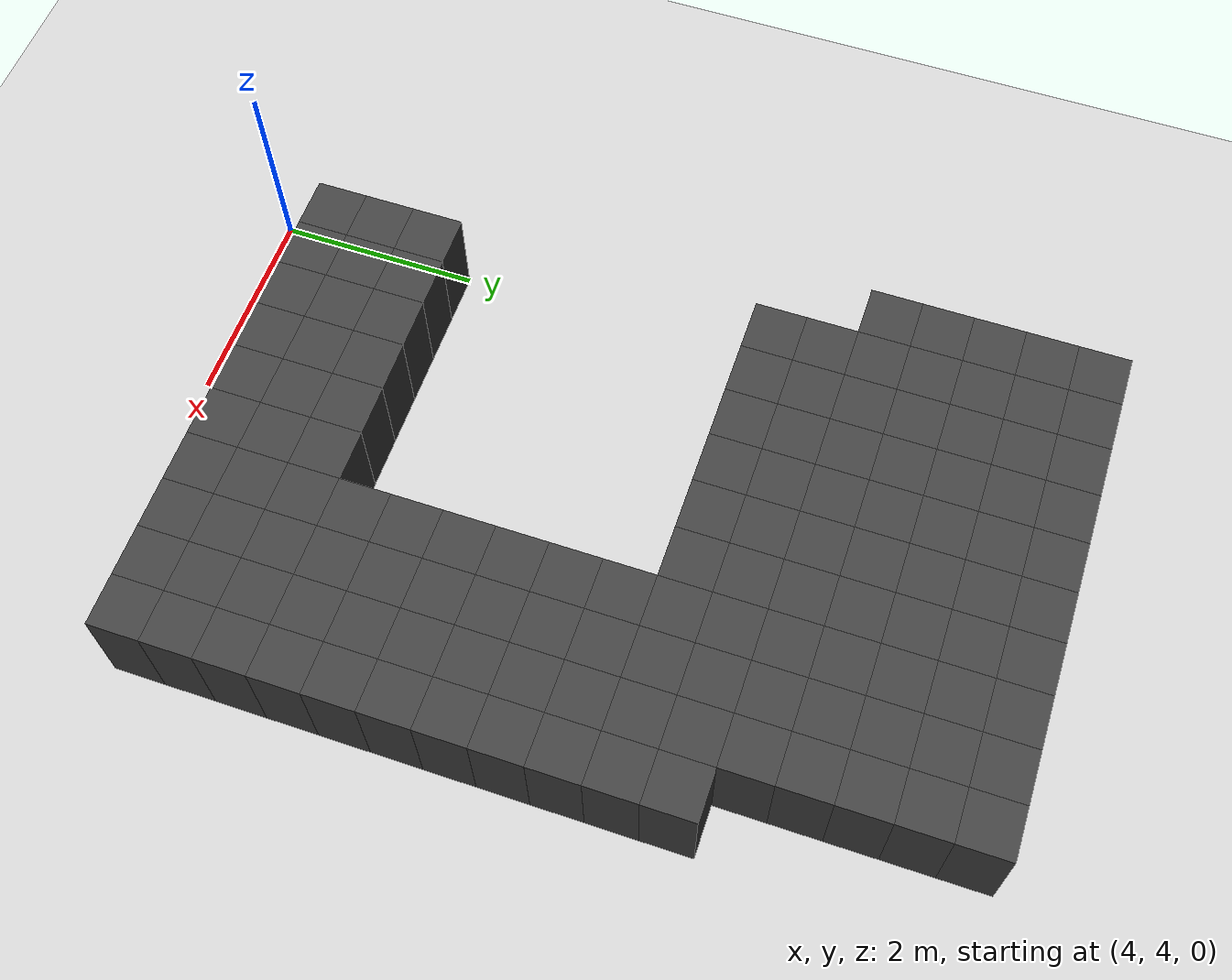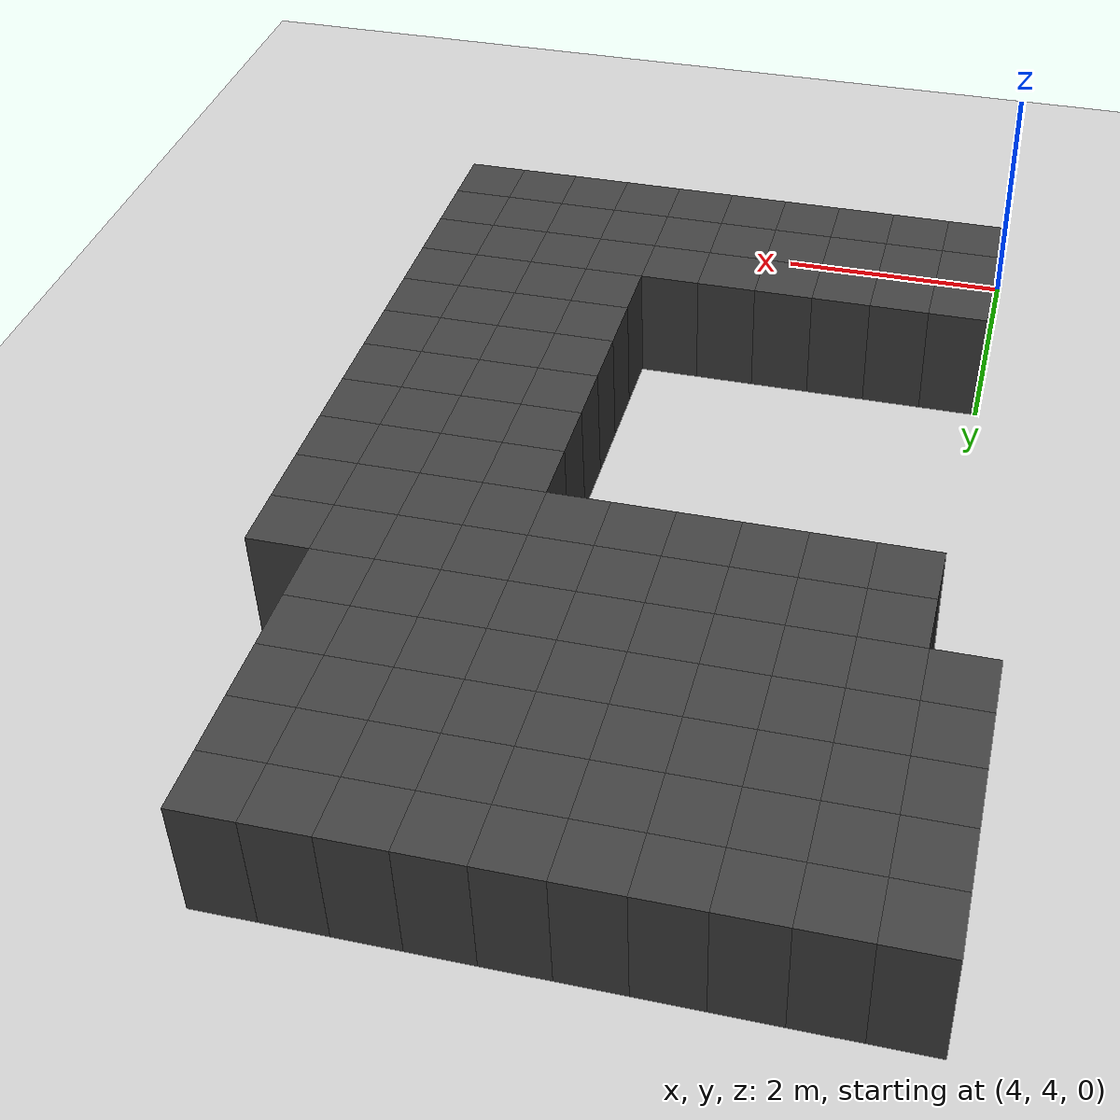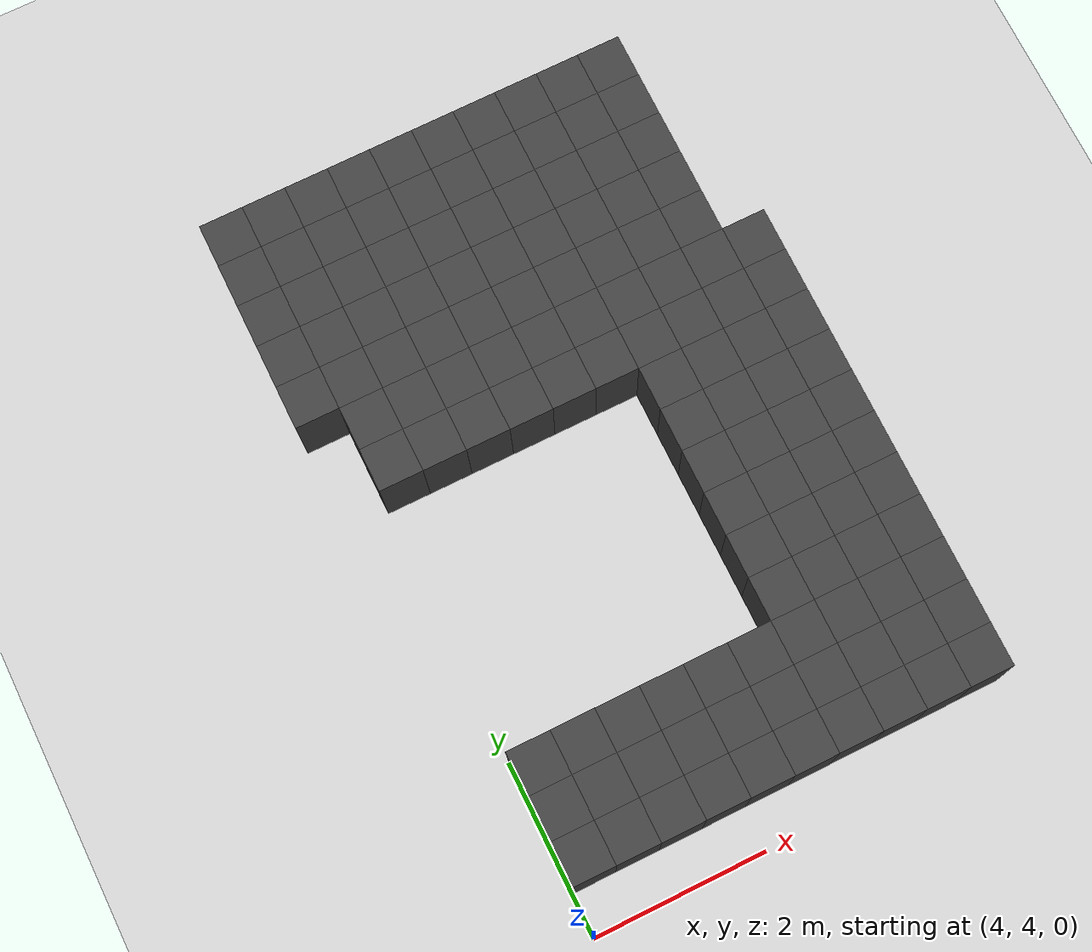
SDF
<sdf version="1.7">
 <world name="map_10726">
  <model name="ground_plane">
   <static>true</static>
   <link name="link">
    <collision name="collision">
     <geometry><plane><normal>0 0 1</normal><size>200 200</size></plane></geometry>
    </collision>
    <visual name="visual">
     <geometry><plane><normal>0 0 1</normal><size>200 200</size></plane></geometry>
     <material><ambient>0.8 0.8 0.8 1</ambient><diffuse>0.8 0.8 0.8 1</diffuse></material>
    </visual>
   </link>
  </model>
  <model name="maze_environment">
   <static>true</static>
   <link name="wall_32">
    <pose>3.750 12.250 0.500 0 0 0</pose>
    <collision name="col"><geometry><box><size>0.5 0.5 1.0</size></box></geometry></collision>
    <visual name="vis">
     <geometry><box><size>0.5 0.5 1.0</size></box></geometry>
     <material><ambient>0.15 0.15 0.15 1</ambient><diffuse>0.25 0.25 0.25 1</diffuse></material>
    </visual>
   </link>
   <link name="wall_33">
    <pose>4.250 12.250 0.500 0 0 0</pose>
    <collision name="col"><geometry><box><size>0.5 0.5 1.0</size></box></geometry></collision>
    <visual name="vis">
     <geometry><box><size>0.5 0.5 1.0</size></box></geometry>
     <material><ambient>0.15 0.15 0.15 1</ambient><diffuse>0.25 0.25 0.25 1</diffuse></material>
    </visual>
   </link>
   <link name="wall_34">
    <pose>4.750 12.250 0.500 0 0 0</pose>
    <collision name="col"><geometry><box><size>0.5 0.5 1.0</size></box></geometry></collision>
    <visual name="vis">
     <geometry><box><size>0.5 0.5 1.0</size></box></geometry>
     <material><ambient>0.15 0.15 0.15 1</ambient><diffuse>0.25 0.25 0.25 1</diffuse></material>
    </visual>
   </link>
   <link name="wall_35">
    <pose>5.250 12.250 0.500 0 0 0</pose>
    <collision name="col"><geometry><box><size>0.5 0.5 1.0</size></box></geometry></collision>
    <visual name="vis">
     <geometry><box><size>0.5 0.5 1.0</size></box></geometry>
     <material><ambient>0.15 0.15 0.15 1</ambient><diffuse>0.25 0.25 0.25 1</diffuse></material>
    </visual>
   </link>
   <link name="wall_36">
    <pose>5.750 12.250 0.500 0 0 0</pose>
    <collision name="col"><geometry><box><size>0.5 0.5 1.0</size></box></geometry></collision>
    <visual name="vis">
     <geometry><box><size>0.5 0.5 1.0</size></box></geometry>
     <material><ambient>0.15 0.15 0.15 1</ambient><diffuse>0.25 0.25 0.25 1</diffuse></material>
    </visual>
   </link>
   <link name="wall_37">
    <pose>6.250 12.250 0.500 0 0 0</pose>
    <collision name="col"><geometry><box><size>0.5 0.5 1.0</size></box></geometry></collision>
    <visual name="vis">
     <geometry><box><size>0.5 0.5 1.0</size></box></geometry>
     <material><ambient>0.15 0.15 0.15 1</ambient><diffuse>0.25 0.25 0.25 1</diffuse></material>
    </visual>
   </link>
   <link name="wall_38">
    <pose>6.750 12.250 0.500 0 0 0</pose>
    <collision name="col"><geometry><box><size>0.5 0.5 1.0</size></box></geometry></collision>
    <visual name="vis">
     <geometry><box><size>0.5 0.5 1.0</size></box></geometry>
     <material><ambient>0.15 0.15 0.15 1</ambient><diffuse>0.25 0.25 0.25 1</diffuse></material>
    </visual>
   </link>
   <link name="wall_39">
    <pose>7.250 12.250 0.500 0 0 0</pose>
    <collision name="col"><geometry><box><size>0.5 0.5 1.0</size></box></geometry></collision>
    <visual name="vis">
     <geometry><box><size>0.5 0.5 1.0</size></box></geometry>
     <material><ambient>0.15 0.15 0.15 1</ambient><diffuse>0.25 0.25 0.25 1</diffuse></material>
    </visual>
   </link>
   <link name="wall_40">
    <pose>7.750 12.250 0.500 0 0 0</pose>
    <collision name="col"><geometry><box><size>0.5 0.5 1.0</size></box></geometry></collision>
    <visual name="vis">
     <geometry><box><size>0.5 0.5 1.0</size></box></geometry>
     <material><ambient>0.15 0.15 0.15 1</ambient><diffuse>0.25 0.25 0.25 1</diffuse></material>
    </visual>
   </link>
   <link name="wall_41">
    <pose>8.250 12.250 0.500 0 0 0</pose>
    <collision name="col"><geometry><box><size>0.5 0.5 1.0</size></box></geometry></collision>
    <visual name="vis">
     <geometry><box><size>0.5 0.5 1.0</size></box></geometry>
     <material><ambient>0.15 0.15 0.15 1</ambient><diffuse>0.25 0.25 0.25 1</diffuse></material>
    </visual>
   </link>
   <link name="wall_79">
    <pose>3.750 11.750 0.500 0 0 0</pose>
    <collision name="col"><geometry><box><size>0.5 0.5 1.0</size></box></geometry></collision>
    <visual name="vis">
     <geometry><box><size>0.5 0.5 1.0</size></box></geometry>
     <material><ambient>0.15 0.15 0.15 1</ambient><diffuse>0.25 0.25 0.25 1</diffuse></material>
    </visual>
   </link>
   <link name="wall_80">
    <pose>4.250 11.750 0.500 0 0 0</pose>
    <collision name="col"><geometry><box><size>0.5 0.5 1.0</size></box></geometry></collision>
    <visual name="vis">
     <geometry><box><size>0.5 0.5 1.0</size></box></geometry>
     <material><ambient>0.15 0.15 0.15 1</ambient><diffuse>0.25 0.25 0.25 1</diffuse></material>
    </visual>
   </link>
   <link name="wall_81">
    <pose>4.750 11.750 0.500 0 0 0</pose>
    <collision name="col"><geometry><box><size>0.5 0.5 1.0</size></box></geometry></collision>
    <visual name="vis">
     <geometry><box><size>0.5 0.5 1.0</size></box></geometry>
     <material><ambient>0.15 0.15 0.15 1</ambient><diffuse>0.25 0.25 0.25 1</diffuse></material>
    </visual>
   </link>
   <link name="wall_82">
    <pose>5.250 11.750 0.500 0 0 0</pose>
    <collision name="col"><geometry><box><size>0.5 0.5 1.0</size></box></geometry></collision>
    <visual name="vis">
     <geometry><box><size>0.5 0.5 1.0</size></box></geometry>
     <material><ambient>0.15 0.15 0.15 1</ambient><diffuse>0.25 0.25 0.25 1</diffuse></material>
    </visual>
   </link>
   <link name="wall_83">
    <pose>5.750 11.750 0.500 0 0 0</pose>
    <collision name="col"><geometry><box><size>0.5 0.5 1.0</size></box></geometry></collision>
    <visual name="vis">
     <geometry><box><size>0.5 0.5 1.0</size></box></geometry>
     <material><ambient>0.15 0.15 0.15 1</ambient><diffuse>0.25 0.25 0.25 1</diffuse></material>
    </visual>
   </link>
   <link name="wall_84">
    <pose>6.250 11.750 0.500 0 0 0</pose>
    <collision name="col"><geometry><box><size>0.5 0.5 1.0</size></box></geometry></collision>
    <visual name="vis">
     <geometry><box><size>0.5 0.5 1.0</size></box></geometry>
     <material><ambient>0.15 0.15 0.15 1</ambient><diffuse>0.25 0.25 0.25 1</diffuse></material>
    </visual>
   </link>
   <link name="wall_85">
    <pose>6.750 11.750 0.500 0 0 0</pose>
    <collision name="col"><geometry><box><size>0.5 0.5 1.0</size></box></geometry></collision>
    <visual name="vis">
     <geometry><box><size>0.5 0.5 1.0</size></box></geometry>
     <material><ambient>0.15 0.15 0.15 1</ambient><diffuse>0.25 0.25 0.25 1</diffuse></material>
    </visual>
   </link>
   <link name="wall_86">
    <pose>7.250 11.750 0.500 0 0 0</pose>
    <collision name="col"><geometry><box><size>0.5 0.5 1.0</size></box></geometry></collision>
    <visual name="vis">
     <geometry><box><size>0.5 0.5 1.0</size></box></geometry>
     <material><ambient>0.15 0.15 0.15 1</ambient><diffuse>0.25 0.25 0.25 1</diffuse></material>
    </visual>
   </link>
   <link name="wall_87">
    <pose>7.750 11.750 0.500 0 0 0</pose>
    <collision name="col"><geometry><box><size>0.5 0.5 1.0</size></box></geometry></collision>
    <visual name="vis">
     <geometry><box><size>0.5 0.5 1.0</size></box></geometry>
     <material><ambient>0.15 0.15 0.15 1</ambient><diffuse>0.25 0.25 0.25 1</diffuse></material>
    </visual>
   </link>
   <link name="wall_88">
    <pose>8.250 11.750 0.500 0 0 0</pose>
    <collision name="col"><geometry><box><size>0.5 0.5 1.0</size></box></geometry></collision>
    <visual name="vis">
     <geometry><box><size>0.5 0.5 1.0</size></box></geometry>
     <material><ambient>0.15 0.15 0.15 1</ambient><diffuse>0.25 0.25 0.25 1</diffuse></material>
    </visual>
   </link>
   <link name="wall_126">
    <pose>3.750 11.250 0.500 0 0 0</pose>
    <collision name="col"><geometry><box><size>0.5 0.5 1.0</size></box></geometry></collision>
    <visual name="vis">
     <geometry><box><size>0.5 0.5 1.0</size></box></geometry>
     <material><ambient>0.15 0.15 0.15 1</ambient><diffuse>0.25 0.25 0.25 1</diffuse></material>
    </visual>
   </link>
   <link name="wall_127">
    <pose>4.250 11.250 0.500 0 0 0</pose>
    <collision name="col"><geometry><box><size>0.5 0.5 1.0</size></box></geometry></collision>
    <visual name="vis">
     <geometry><box><size>0.5 0.5 1.0</size></box></geometry>
     <material><ambient>0.15 0.15 0.15 1</ambient><diffuse>0.25 0.25 0.25 1</diffuse></material>
    </visual>
   </link>
   <link name="wall_128">
    <pose>4.750 11.250 0.500 0 0 0</pose>
    <collision name="col"><geometry><box><size>0.5 0.5 1.0</size></box></geometry></collision>
    <visual name="vis">
     <geometry><box><size>0.5 0.5 1.0</size></box></geometry>
     <material><ambient>0.15 0.15 0.15 1</ambient><diffuse>0.25 0.25 0.25 1</diffuse></material>
    </visual>
   </link>
   <link name="wall_129">
    <pose>5.250 11.250 0.500 0 0 0</pose>
    <collision name="col"><geometry><box><size>0.5 0.5 1.0</size></box></geometry></collision>
    <visual name="vis">
     <geometry><box><size>0.5 0.5 1.0</size></box></geometry>
     <material><ambient>0.15 0.15 0.15 1</ambient><diffuse>0.25 0.25 0.25 1</diffuse></material>
    </visual>
   </link>
   <link name="wall_130">
    <pose>5.750 11.250 0.500 0 0 0</pose>
    <collision name="col"><geometry><box><size>0.5 0.5 1.0</size></box></geometry></collision>
    <visual name="vis">
     <geometry><box><size>0.5 0.5 1.0</size></box></geometry>
     <material><ambient>0.15 0.15 0.15 1</ambient><diffuse>0.25 0.25 0.25 1</diffuse></material>
    </visual>
   </link>
   <link name="wall_131">
    <pose>6.250 11.250 0.500 0 0 0</pose>
    <collision name="col"><geometry><box><size>0.5 0.5 1.0</size></box></geometry></collision>
    <visual name="vis">
     <geometry><box><size>0.5 0.5 1.0</size></box></geometry>
     <material><ambient>0.15 0.15 0.15 1</ambient><diffuse>0.25 0.25 0.25 1</diffuse></material>
    </visual>
   </link>
   <link name="wall_132">
    <pose>6.750 11.250 0.500 0 0 0</pose>
    <collision name="col"><geometry><box><size>0.5 0.5 1.0</size></box></geometry></collision>
    <visual name="vis">
     <geometry><box><size>0.5 0.5 1.0</size></box></geometry>
     <material><ambient>0.15 0.15 0.15 1</ambient><diffuse>0.25 0.25 0.25 1</diffuse></material>
    </visual>
   </link>
   <link name="wall_133">
    <pose>7.250 11.250 0.500 0 0 0</pose>
    <collision name="col"><geometry><box><size>0.5 0.5 1.0</size></box></geometry></collision>
    <visual name="vis">
     <geometry><box><size>0.5 0.5 1.0</size></box></geometry>
     <material><ambient>0.15 0.15 0.15 1</ambient><diffuse>0.25 0.25 0.25 1</diffuse></material>
    </visual>
   </link>
   <link name="wall_134">
    <pose>7.750 11.250 0.500 0 0 0</pose>
    <collision name="col"><geometry><box><size>0.5 0.5 1.0</size></box></geometry></collision>
    <visual name="vis">
     <geometry><box><size>0.5 0.5 1.0</size></box></geometry>
     <material><ambient>0.15 0.15 0.15 1</ambient><diffuse>0.25 0.25 0.25 1</diffuse></material>
    </visual>
   </link>
   <link name="wall_135">
    <pose>8.250 11.250 0.500 0 0 0</pose>
    <collision name="col"><geometry><box><size>0.5 0.5 1.0</size></box></geometry></collision>
    <visual name="vis">
     <geometry><box><size>0.5 0.5 1.0</size></box></geometry>
     <material><ambient>0.15 0.15 0.15 1</ambient><diffuse>0.25 0.25 0.25 1</diffuse></material>
    </visual>
   </link>
   <link name="wall_173">
    <pose>3.750 10.750 0.500 0 0 0</pose>
    <collision name="col"><geometry><box><size>0.5 0.5 1.0</size></box></geometry></collision>
    <visual name="vis">
     <geometry><box><size>0.5 0.5 1.0</size></box></geometry>
     <material><ambient>0.15 0.15 0.15 1</ambient><diffuse>0.25 0.25 0.25 1</diffuse></material>
    </visual>
   </link>
   <link name="wall_174">
    <pose>4.250 10.750 0.500 0 0 0</pose>
    <collision name="col"><geometry><box><size>0.5 0.5 1.0</size></box></geometry></collision>
    <visual name="vis">
     <geometry><box><size>0.5 0.5 1.0</size></box></geometry>
     <material><ambient>0.15 0.15 0.15 1</ambient><diffuse>0.25 0.25 0.25 1</diffuse></material>
    </visual>
   </link>
   <link name="wall_175">
    <pose>4.750 10.750 0.500 0 0 0</pose>
    <collision name="col"><geometry><box><size>0.5 0.5 1.0</size></box></geometry></collision>
    <visual name="vis">
     <geometry><box><size>0.5 0.5 1.0</size></box></geometry>
     <material><ambient>0.15 0.15 0.15 1</ambient><diffuse>0.25 0.25 0.25 1</diffuse></material>
    </visual>
   </link>
   <link name="wall_176">
    <pose>5.250 10.750 0.500 0 0 0</pose>
    <collision name="col"><geometry><box><size>0.5 0.5 1.0</size></box></geometry></collision>
    <visual name="vis">
     <geometry><box><size>0.5 0.5 1.0</size></box></geometry>
     <material><ambient>0.15 0.15 0.15 1</ambient><diffuse>0.25 0.25 0.25 1</diffuse></material>
    </visual>
   </link>
   <link name="wall_177">
    <pose>5.750 10.750 0.500 0 0 0</pose>
    <collision name="col"><geometry><box><size>0.5 0.5 1.0</size></box></geometry></collision>
    <visual name="vis">
     <geometry><box><size>0.5 0.5 1.0</size></box></geometry>
     <material><ambient>0.15 0.15 0.15 1</ambient><diffuse>0.25 0.25 0.25 1</diffuse></material>
    </visual>
   </link>
   <link name="wall_178">
    <pose>6.250 10.750 0.500 0 0 0</pose>
    <collision name="col"><geometry><box><size>0.5 0.5 1.0</size></box></geometry></collision>
    <visual name="vis">
     <geometry><box><size>0.5 0.5 1.0</size></box></geometry>
     <material><ambient>0.15 0.15 0.15 1</ambient><diffuse>0.25 0.25 0.25 1</diffuse></material>
    </visual>
   </link>
   <link name="wall_179">
    <pose>6.750 10.750 0.500 0 0 0</pose>
    <collision name="col"><geometry><box><size>0.5 0.5 1.0</size></box></geometry></collision>
    <visual name="vis">
     <geometry><box><size>0.5 0.5 1.0</size></box></geometry>
     <material><ambient>0.15 0.15 0.15 1</ambient><diffuse>0.25 0.25 0.25 1</diffuse></material>
    </visual>
   </link>
   <link name="wall_180">
    <pose>7.250 10.750 0.500 0 0 0</pose>
    <collision name="col"><geometry><box><size>0.5 0.5 1.0</size></box></geometry></collision>
    <visual name="vis">
     <geometry><box><size>0.5 0.5 1.0</size></box></geometry>
     <material><ambient>0.15 0.15 0.15 1</ambient><diffuse>0.25 0.25 0.25 1</diffuse></material>
    </visual>
   </link>
   <link name="wall_181">
    <pose>7.750 10.750 0.500 0 0 0</pose>
    <collision name="col"><geometry><box><size>0.5 0.5 1.0</size></box></geometry></collision>
    <visual name="vis">
     <geometry><box><size>0.5 0.5 1.0</size></box></geometry>
     <material><ambient>0.15 0.15 0.15 1</ambient><diffuse>0.25 0.25 0.25 1</diffuse></material>
    </visual>
   </link>
   <link name="wall_182">
    <pose>8.250 10.750 0.500 0 0 0</pose>
    <collision name="col"><geometry><box><size>0.5 0.5 1.0</size></box></geometry></collision>
    <visual name="vis">
     <geometry><box><size>0.5 0.5 1.0</size></box></geometry>
     <material><ambient>0.15 0.15 0.15 1</ambient><diffuse>0.25 0.25 0.25 1</diffuse></material>
    </visual>
   </link>
   <link name="wall_222">
    <pose>3.750 10.250 0.500 0 0 0</pose>
    <collision name="col"><geometry><box><size>0.5 0.5 1.0</size></box></geometry></collision>
    <visual name="vis">
     <geometry><box><size>0.5 0.5 1.0</size></box></geometry>
     <material><ambient>0.15 0.15 0.15 1</ambient><diffuse>0.25 0.25 0.25 1</diffuse></material>
    </visual>
   </link>
   <link name="wall_223">
    <pose>4.250 10.250 0.500 0 0 0</pose>
    <collision name="col"><geometry><box><size>0.5 0.5 1.0</size></box></geometry></collision>
    <visual name="vis">
     <geometry><box><size>0.5 0.5 1.0</size></box></geometry>
     <material><ambient>0.15 0.15 0.15 1</ambient><diffuse>0.25 0.25 0.25 1</diffuse></material>
    </visual>
   </link>
   <link name="wall_224">
    <pose>4.750 10.250 0.500 0 0 0</pose>
    <collision name="col"><geometry><box><size>0.5 0.5 1.0</size></box></geometry></collision>
    <visual name="vis">
     <geometry><box><size>0.5 0.5 1.0</size></box></geometry>
     <material><ambient>0.15 0.15 0.15 1</ambient><diffuse>0.25 0.25 0.25 1</diffuse></material>
    </visual>
   </link>
   <link name="wall_225">
    <pose>5.250 10.250 0.500 0 0 0</pose>
    <collision name="col"><geometry><box><size>0.5 0.5 1.0</size></box></geometry></collision>
    <visual name="vis">
     <geometry><box><size>0.5 0.5 1.0</size></box></geometry>
     <material><ambient>0.15 0.15 0.15 1</ambient><diffuse>0.25 0.25 0.25 1</diffuse></material>
    </visual>
   </link>
   <link name="wall_226">
    <pose>5.750 10.250 0.500 0 0 0</pose>
    <collision name="col"><geometry><box><size>0.5 0.5 1.0</size></box></geometry></collision>
    <visual name="vis">
     <geometry><box><size>0.5 0.5 1.0</size></box></geometry>
     <material><ambient>0.15 0.15 0.15 1</ambient><diffuse>0.25 0.25 0.25 1</diffuse></material>
    </visual>
   </link>
   <link name="wall_227">
    <pose>6.250 10.250 0.500 0 0 0</pose>
    <collision name="col"><geometry><box><size>0.5 0.5 1.0</size></box></geometry></collision>
    <visual name="vis">
     <geometry><box><size>0.5 0.5 1.0</size></box></geometry>
     <material><ambient>0.15 0.15 0.15 1</ambient><diffuse>0.25 0.25 0.25 1</diffuse></material>
    </visual>
   </link>
   <link name="wall_228">
    <pose>6.750 10.250 0.500 0 0 0</pose>
    <collision name="col"><geometry><box><size>0.5 0.5 1.0</size></box></geometry></collision>
    <visual name="vis">
     <geometry><box><size>0.5 0.5 1.0</size></box></geometry>
     <material><ambient>0.15 0.15 0.15 1</ambient><diffuse>0.25 0.25 0.25 1</diffuse></material>
    </visual>
   </link>
   <link name="wall_229">
    <pose>7.250 10.250 0.500 0 0 0</pose>
    <collision name="col"><geometry><box><size>0.5 0.5 1.0</size></box></geometry></collision>
    <visual name="vis">
     <geometry><box><size>0.5 0.5 1.0</size></box></geometry>
     <material><ambient>0.15 0.15 0.15 1</ambient><diffuse>0.25 0.25 0.25 1</diffuse></material>
    </visual>
   </link>
   <link name="wall_230">
    <pose>7.750 10.250 0.500 0 0 0</pose>
    <collision name="col"><geometry><box><size>0.5 0.5 1.0</size></box></geometry></collision>
    <visual name="vis">
     <geometry><box><size>0.5 0.5 1.0</size></box></geometry>
     <material><ambient>0.15 0.15 0.15 1</ambient><diffuse>0.25 0.25 0.25 1</diffuse></material>
    </visual>
   </link>
   <link name="wall_231">
    <pose>8.250 10.250 0.500 0 0 0</pose>
    <collision name="col"><geometry><box><size>0.5 0.5 1.0</size></box></geometry></collision>
    <visual name="vis">
     <geometry><box><size>0.5 0.5 1.0</size></box></geometry>
     <material><ambient>0.15 0.15 0.15 1</ambient><diffuse>0.25 0.25 0.25 1</diffuse></material>
    </visual>
   </link>
   <link name="wall_272">
    <pose>4.250 9.750 0.500 0 0 0</pose>
    <collision name="col"><geometry><box><size>0.5 0.5 1.0</size></box></geometry></collision>
    <visual name="vis">
     <geometry><box><size>0.5 0.5 1.0</size></box></geometry>
     <material><ambient>0.15 0.15 0.15 1</ambient><diffuse>0.25 0.25 0.25 1</diffuse></material>
    </visual>
   </link>
   <link name="wall_273">
    <pose>4.750 9.750 0.500 0 0 0</pose>
    <collision name="col"><geometry><box><size>0.5 0.5 1.0</size></box></geometry></collision>
    <visual name="vis">
     <geometry><box><size>0.5 0.5 1.0</size></box></geometry>
     <material><ambient>0.15 0.15 0.15 1</ambient><diffuse>0.25 0.25 0.25 1</diffuse></material>
    </visual>
   </link>
   <link name="wall_274">
    <pose>5.250 9.750 0.500 0 0 0</pose>
    <collision name="col"><geometry><box><size>0.5 0.5 1.0</size></box></geometry></collision>
    <visual name="vis">
     <geometry><box><size>0.5 0.5 1.0</size></box></geometry>
     <material><ambient>0.15 0.15 0.15 1</ambient><diffuse>0.25 0.25 0.25 1</diffuse></material>
    </visual>
   </link>
   <link name="wall_275">
    <pose>5.750 9.750 0.500 0 0 0</pose>
    <collision name="col"><geometry><box><size>0.5 0.5 1.0</size></box></geometry></collision>
    <visual name="vis">
     <geometry><box><size>0.5 0.5 1.0</size></box></geometry>
     <material><ambient>0.15 0.15 0.15 1</ambient><diffuse>0.25 0.25 0.25 1</diffuse></material>
    </visual>
   </link>
   <link name="wall_276">
    <pose>6.250 9.750 0.500 0 0 0</pose>
    <collision name="col"><geometry><box><size>0.5 0.5 1.0</size></box></geometry></collision>
    <visual name="vis">
     <geometry><box><size>0.5 0.5 1.0</size></box></geometry>
     <material><ambient>0.15 0.15 0.15 1</ambient><diffuse>0.25 0.25 0.25 1</diffuse></material>
    </visual>
   </link>
   <link name="wall_277">
    <pose>6.750 9.750 0.500 0 0 0</pose>
    <collision name="col"><geometry><box><size>0.5 0.5 1.0</size></box></geometry></collision>
    <visual name="vis">
     <geometry><box><size>0.5 0.5 1.0</size></box></geometry>
     <material><ambient>0.15 0.15 0.15 1</ambient><diffuse>0.25 0.25 0.25 1</diffuse></material>
    </visual>
   </link>
   <link name="wall_278">
    <pose>7.250 9.750 0.500 0 0 0</pose>
    <collision name="col"><geometry><box><size>0.5 0.5 1.0</size></box></geometry></collision>
    <visual name="vis">
     <geometry><box><size>0.5 0.5 1.0</size></box></geometry>
     <material><ambient>0.15 0.15 0.15 1</ambient><diffuse>0.25 0.25 0.25 1</diffuse></material>
    </visual>
   </link>
   <link name="wall_279">
    <pose>7.750 9.750 0.500 0 0 0</pose>
    <collision name="col"><geometry><box><size>0.5 0.5 1.0</size></box></geometry></collision>
    <visual name="vis">
     <geometry><box><size>0.5 0.5 1.0</size></box></geometry>
     <material><ambient>0.15 0.15 0.15 1</ambient><diffuse>0.25 0.25 0.25 1</diffuse></material>
    </visual>
   </link>
   <link name="wall_280">
    <pose>8.250 9.750 0.500 0 0 0</pose>
    <collision name="col"><geometry><box><size>0.5 0.5 1.0</size></box></geometry></collision>
    <visual name="vis">
     <geometry><box><size>0.5 0.5 1.0</size></box></geometry>
     <material><ambient>0.15 0.15 0.15 1</ambient><diffuse>0.25 0.25 0.25 1</diffuse></material>
    </visual>
   </link>
   <link name="wall_281">
    <pose>8.750 9.750 0.500 0 0 0</pose>
    <collision name="col"><geometry><box><size>0.5 0.5 1.0</size></box></geometry></collision>
    <visual name="vis">
     <geometry><box><size>0.5 0.5 1.0</size></box></geometry>
     <material><ambient>0.15 0.15 0.15 1</ambient><diffuse>0.25 0.25 0.25 1</diffuse></material>
    </visual>
   </link>
   <link name="wall_321">
    <pose>4.250 9.250 0.500 0 0 0</pose>
    <collision name="col"><geometry><box><size>0.5 0.5 1.0</size></box></geometry></collision>
    <visual name="vis">
     <geometry><box><size>0.5 0.5 1.0</size></box></geometry>
     <material><ambient>0.15 0.15 0.15 1</ambient><diffuse>0.25 0.25 0.25 1</diffuse></material>
    </visual>
   </link>
   <link name="wall_322">
    <pose>4.750 9.250 0.500 0 0 0</pose>
    <collision name="col"><geometry><box><size>0.5 0.5 1.0</size></box></geometry></collision>
    <visual name="vis">
     <geometry><box><size>0.5 0.5 1.0</size></box></geometry>
     <material><ambient>0.15 0.15 0.15 1</ambient><diffuse>0.25 0.25 0.25 1</diffuse></material>
    </visual>
   </link>
   <link name="wall_323">
    <pose>5.250 9.250 0.500 0 0 0</pose>
    <collision name="col"><geometry><box><size>0.5 0.5 1.0</size></box></geometry></collision>
    <visual name="vis">
     <geometry><box><size>0.5 0.5 1.0</size></box></geometry>
     <material><ambient>0.15 0.15 0.15 1</ambient><diffuse>0.25 0.25 0.25 1</diffuse></material>
    </visual>
   </link>
   <link name="wall_324">
    <pose>5.750 9.250 0.500 0 0 0</pose>
    <collision name="col"><geometry><box><size>0.5 0.5 1.0</size></box></geometry></collision>
    <visual name="vis">
     <geometry><box><size>0.5 0.5 1.0</size></box></geometry>
     <material><ambient>0.15 0.15 0.15 1</ambient><diffuse>0.25 0.25 0.25 1</diffuse></material>
    </visual>
   </link>
   <link name="wall_325">
    <pose>6.250 9.250 0.500 0 0 0</pose>
    <collision name="col"><geometry><box><size>0.5 0.5 1.0</size></box></geometry></collision>
    <visual name="vis">
     <geometry><box><size>0.5 0.5 1.0</size></box></geometry>
     <material><ambient>0.15 0.15 0.15 1</ambient><diffuse>0.25 0.25 0.25 1</diffuse></material>
    </visual>
   </link>
   <link name="wall_326">
    <pose>6.750 9.250 0.500 0 0 0</pose>
    <collision name="col"><geometry><box><size>0.5 0.5 1.0</size></box></geometry></collision>
    <visual name="vis">
     <geometry><box><size>0.5 0.5 1.0</size></box></geometry>
     <material><ambient>0.15 0.15 0.15 1</ambient><diffuse>0.25 0.25 0.25 1</diffuse></material>
    </visual>
   </link>
   <link name="wall_327">
    <pose>7.250 9.250 0.500 0 0 0</pose>
    <collision name="col"><geometry><box><size>0.5 0.5 1.0</size></box></geometry></collision>
    <visual name="vis">
     <geometry><box><size>0.5 0.5 1.0</size></box></geometry>
     <material><ambient>0.15 0.15 0.15 1</ambient><diffuse>0.25 0.25 0.25 1</diffuse></material>
    </visual>
   </link>
   <link name="wall_328">
    <pose>7.750 9.250 0.500 0 0 0</pose>
    <collision name="col"><geometry><box><size>0.5 0.5 1.0</size></box></geometry></collision>
    <visual name="vis">
     <geometry><box><size>0.5 0.5 1.0</size></box></geometry>
     <material><ambient>0.15 0.15 0.15 1</ambient><diffuse>0.25 0.25 0.25 1</diffuse></material>
    </visual>
   </link>
   <link name="wall_329">
    <pose>8.250 9.250 0.500 0 0 0</pose>
    <collision name="col"><geometry><box><size>0.5 0.5 1.0</size></box></geometry></collision>
    <visual name="vis">
     <geometry><box><size>0.5 0.5 1.0</size></box></geometry>
     <material><ambient>0.15 0.15 0.15 1</ambient><diffuse>0.25 0.25 0.25 1</diffuse></material>
    </visual>
   </link>
   <link name="wall_330">
    <pose>8.750 9.250 0.500 0 0 0</pose>
    <collision name="col"><geometry><box><size>0.5 0.5 1.0</size></box></geometry></collision>
    <visual name="vis">
     <geometry><box><size>0.5 0.5 1.0</size></box></geometry>
     <material><ambient>0.15 0.15 0.15 1</ambient><diffuse>0.25 0.25 0.25 1</diffuse></material>
    </visual>
   </link>
   <link name="wall_368">
    <pose>7.250 8.750 0.500 0 0 0</pose>
    <collision name="col"><geometry><box><size>0.5 0.5 1.0</size></box></geometry></collision>
    <visual name="vis">
     <geometry><box><size>0.5 0.5 1.0</size></box></geometry>
     <material><ambient>0.15 0.15 0.15 1</ambient><diffuse>0.25 0.25 0.25 1</diffuse></material>
    </visual>
   </link>
   <link name="wall_369">
    <pose>7.750 8.750 0.500 0 0 0</pose>
    <collision name="col"><geometry><box><size>0.5 0.5 1.0</size></box></geometry></collision>
    <visual name="vis">
     <geometry><box><size>0.5 0.5 1.0</size></box></geometry>
     <material><ambient>0.15 0.15 0.15 1</ambient><diffuse>0.25 0.25 0.25 1</diffuse></material>
    </visual>
   </link>
   <link name="wall_370">
    <pose>8.250 8.750 0.500 0 0 0</pose>
    <collision name="col"><geometry><box><size>0.5 0.5 1.0</size></box></geometry></collision>
    <visual name="vis">
     <geometry><box><size>0.5 0.5 1.0</size></box></geometry>
     <material><ambient>0.15 0.15 0.15 1</ambient><diffuse>0.25 0.25 0.25 1</diffuse></material>
    </visual>
   </link>
   <link name="wall_371">
    <pose>8.750 8.750 0.500 0 0 0</pose>
    <collision name="col"><geometry><box><size>0.5 0.5 1.0</size></box></geometry></collision>
    <visual name="vis">
     <geometry><box><size>0.5 0.5 1.0</size></box></geometry>
     <material><ambient>0.15 0.15 0.15 1</ambient><diffuse>0.25 0.25 0.25 1</diffuse></material>
    </visual>
   </link>
   <link name="wall_409">
    <pose>7.250 8.250 0.500 0 0 0</pose>
    <collision name="col"><geometry><box><size>0.5 0.5 1.0</size></box></geometry></collision>
    <visual name="vis">
     <geometry><box><size>0.5 0.5 1.0</size></box></geometry>
     <material><ambient>0.15 0.15 0.15 1</ambient><diffuse>0.25 0.25 0.25 1</diffuse></material>
    </visual>
   </link>
   <link name="wall_410">
    <pose>7.750 8.250 0.500 0 0 0</pose>
    <collision name="col"><geometry><box><size>0.5 0.5 1.0</size></box></geometry></collision>
    <visual name="vis">
     <geometry><box><size>0.5 0.5 1.0</size></box></geometry>
     <material><ambient>0.15 0.15 0.15 1</ambient><diffuse>0.25 0.25 0.25 1</diffuse></material>
    </visual>
   </link>
   <link name="wall_411">
    <pose>8.250 8.250 0.500 0 0 0</pose>
    <collision name="col"><geometry><box><size>0.5 0.5 1.0</size></box></geometry></collision>
    <visual name="vis">
     <geometry><box><size>0.5 0.5 1.0</size></box></geometry>
     <material><ambient>0.15 0.15 0.15 1</ambient><diffuse>0.25 0.25 0.25 1</diffuse></material>
    </visual>
   </link>
   <link name="wall_412">
    <pose>8.750 8.250 0.500 0 0 0</pose>
    <collision name="col"><geometry><box><size>0.5 0.5 1.0</size></box></geometry></collision>
    <visual name="vis">
     <geometry><box><size>0.5 0.5 1.0</size></box></geometry>
     <material><ambient>0.15 0.15 0.15 1</ambient><diffuse>0.25 0.25 0.25 1</diffuse></material>
    </visual>
   </link>
   <link name="wall_450">
    <pose>7.250 7.750 0.500 0 0 0</pose>
    <collision name="col"><geometry><box><size>0.5 0.5 1.0</size></box></geometry></collision>
    <visual name="vis">
     <geometry><box><size>0.5 0.5 1.0</size></box></geometry>
     <material><ambient>0.15 0.15 0.15 1</ambient><diffuse>0.25 0.25 0.25 1</diffuse></material>
    </visual>
   </link>
   <link name="wall_451">
    <pose>7.750 7.750 0.500 0 0 0</pose>
    <collision name="col"><geometry><box><size>0.5 0.5 1.0</size></box></geometry></collision>
    <visual name="vis">
     <geometry><box><size>0.5 0.5 1.0</size></box></geometry>
     <material><ambient>0.15 0.15 0.15 1</ambient><diffuse>0.25 0.25 0.25 1</diffuse></material>
    </visual>
   </link>
   <link name="wall_452">
    <pose>8.250 7.750 0.500 0 0 0</pose>
    <collision name="col"><geometry><box><size>0.5 0.5 1.0</size></box></geometry></collision>
    <visual name="vis">
     <geometry><box><size>0.5 0.5 1.0</size></box></geometry>
     <material><ambient>0.15 0.15 0.15 1</ambient><diffuse>0.25 0.25 0.25 1</diffuse></material>
    </visual>
   </link>
   <link name="wall_453">
    <pose>8.750 7.750 0.500 0 0 0</pose>
    <collision name="col"><geometry><box><size>0.5 0.5 1.0</size></box></geometry></collision>
    <visual name="vis">
     <geometry><box><size>0.5 0.5 1.0</size></box></geometry>
     <material><ambient>0.15 0.15 0.15 1</ambient><diffuse>0.25 0.25 0.25 1</diffuse></material>
    </visual>
   </link>
   <link name="wall_491">
    <pose>7.250 7.250 0.500 0 0 0</pose>
    <collision name="col"><geometry><box><size>0.5 0.5 1.0</size></box></geometry></collision>
    <visual name="vis">
     <geometry><box><size>0.5 0.5 1.0</size></box></geometry>
     <material><ambient>0.15 0.15 0.15 1</ambient><diffuse>0.25 0.25 0.25 1</diffuse></material>
    </visual>
   </link>
   <link name="wall_492">
    <pose>7.750 7.250 0.500 0 0 0</pose>
    <collision name="col"><geometry><box><size>0.5 0.5 1.0</size></box></geometry></collision>
    <visual name="vis">
     <geometry><box><size>0.5 0.5 1.0</size></box></geometry>
     <material><ambient>0.15 0.15 0.15 1</ambient><diffuse>0.25 0.25 0.25 1</diffuse></material>
    </visual>
   </link>
   <link name="wall_493">
    <pose>8.250 7.250 0.500 0 0 0</pose>
    <collision name="col"><geometry><box><size>0.5 0.5 1.0</size></box></geometry></collision>
    <visual name="vis">
     <geometry><box><size>0.5 0.5 1.0</size></box></geometry>
     <material><ambient>0.15 0.15 0.15 1</ambient><diffuse>0.25 0.25 0.25 1</diffuse></material>
    </visual>
   </link>
   <link name="wall_494">
    <pose>8.750 7.250 0.500 0 0 0</pose>
    <collision name="col"><geometry><box><size>0.5 0.5 1.0</size></box></geometry></collision>
    <visual name="vis">
     <geometry><box><size>0.5 0.5 1.0</size></box></geometry>
     <material><ambient>0.15 0.15 0.15 1</ambient><diffuse>0.25 0.25 0.25 1</diffuse></material>
    </visual>
   </link>
   <link name="wall_532">
    <pose>7.250 6.750 0.500 0 0 0</pose>
    <collision name="col"><geometry><box><size>0.5 0.5 1.0</size></box></geometry></collision>
    <visual name="vis">
     <geometry><box><size>0.5 0.5 1.0</size></box></geometry>
     <material><ambient>0.15 0.15 0.15 1</ambient><diffuse>0.25 0.25 0.25 1</diffuse></material>
    </visual>
   </link>
   <link name="wall_533">
    <pose>7.750 6.750 0.500 0 0 0</pose>
    <collision name="col"><geometry><box><size>0.5 0.5 1.0</size></box></geometry></collision>
    <visual name="vis">
     <geometry><box><size>0.5 0.5 1.0</size></box></geometry>
     <material><ambient>0.15 0.15 0.15 1</ambient><diffuse>0.25 0.25 0.25 1</diffuse></material>
    </visual>
   </link>
   <link name="wall_534">
    <pose>8.250 6.750 0.500 0 0 0</pose>
    <collision name="col"><geometry><box><size>0.5 0.5 1.0</size></box></geometry></collision>
    <visual name="vis">
     <geometry><box><size>0.5 0.5 1.0</size></box></geometry>
     <material><ambient>0.15 0.15 0.15 1</ambient><diffuse>0.25 0.25 0.25 1</diffuse></material>
    </visual>
   </link>
   <link name="wall_535">
    <pose>8.750 6.750 0.500 0 0 0</pose>
    <collision name="col"><geometry><box><size>0.5 0.5 1.0</size></box></geometry></collision>
    <visual name="vis">
     <geometry><box><size>0.5 0.5 1.0</size></box></geometry>
     <material><ambient>0.15 0.15 0.15 1</ambient><diffuse>0.25 0.25 0.25 1</diffuse></material>
    </visual>
   </link>
   <link name="wall_573">
    <pose>7.250 6.250 0.500 0 0 0</pose>
    <collision name="col"><geometry><box><size>0.5 0.5 1.0</size></box></geometry></collision>
    <visual name="vis">
     <geometry><box><size>0.5 0.5 1.0</size></box></geometry>
     <material><ambient>0.15 0.15 0.15 1</ambient><diffuse>0.25 0.25 0.25 1</diffuse></material>
    </visual>
   </link>
   <link name="wall_574">
    <pose>7.750 6.250 0.500 0 0 0</pose>
    <collision name="col"><geometry><box><size>0.5 0.5 1.0</size></box></geometry></collision>
    <visual name="vis">
     <geometry><box><size>0.5 0.5 1.0</size></box></geometry>
     <material><ambient>0.15 0.15 0.15 1</ambient><diffuse>0.25 0.25 0.25 1</diffuse></material>
    </visual>
   </link>
   <link name="wall_575">
    <pose>8.250 6.250 0.500 0 0 0</pose>
    <collision name="col"><geometry><box><size>0.5 0.5 1.0</size></box></geometry></collision>
    <visual name="vis">
     <geometry><box><size>0.5 0.5 1.0</size></box></geometry>
     <material><ambient>0.15 0.15 0.15 1</ambient><diffuse>0.25 0.25 0.25 1</diffuse></material>
    </visual>
   </link>
   <link name="wall_576">
    <pose>8.750 6.250 0.500 0 0 0</pose>
    <collision name="col"><geometry><box><size>0.5 0.5 1.0</size></box></geometry></collision>
    <visual name="vis">
     <geometry><box><size>0.5 0.5 1.0</size></box></geometry>
     <material><ambient>0.15 0.15 0.15 1</ambient><diffuse>0.25 0.25 0.25 1</diffuse></material>
    </visual>
   </link>
   <link name="wall_615">
    <pose>4.250 5.750 0.500 0 0 0</pose>
    <collision name="col"><geometry><box><size>0.5 0.5 1.0</size></box></geometry></collision>
    <visual name="vis">
     <geometry><box><size>0.5 0.5 1.0</size></box></geometry>
     <material><ambient>0.15 0.15 0.15 1</ambient><diffuse>0.25 0.25 0.25 1</diffuse></material>
    </visual>
   </link>
   <link name="wall_616">
    <pose>4.750 5.750 0.500 0 0 0</pose>
    <collision name="col"><geometry><box><size>0.5 0.5 1.0</size></box></geometry></collision>
    <visual name="vis">
     <geometry><box><size>0.5 0.5 1.0</size></box></geometry>
     <material><ambient>0.15 0.15 0.15 1</ambient><diffuse>0.25 0.25 0.25 1</diffuse></material>
    </visual>
   </link>
   <link name="wall_617">
    <pose>5.250 5.750 0.500 0 0 0</pose>
    <collision name="col"><geometry><box><size>0.5 0.5 1.0</size></box></geometry></collision>
    <visual name="vis">
     <geometry><box><size>0.5 0.5 1.0</size></box></geometry>
     <material><ambient>0.15 0.15 0.15 1</ambient><diffuse>0.25 0.25 0.25 1</diffuse></material>
    </visual>
   </link>
   <link name="wall_618">
    <pose>5.750 5.750 0.500 0 0 0</pose>
    <collision name="col"><geometry><box><size>0.5 0.5 1.0</size></box></geometry></collision>
    <visual name="vis">
     <geometry><box><size>0.5 0.5 1.0</size></box></geometry>
     <material><ambient>0.15 0.15 0.15 1</ambient><diffuse>0.25 0.25 0.25 1</diffuse></material>
    </visual>
   </link>
   <link name="wall_619">
    <pose>6.250 5.750 0.500 0 0 0</pose>
    <collision name="col"><geometry><box><size>0.5 0.5 1.0</size></box></geometry></collision>
    <visual name="vis">
     <geometry><box><size>0.5 0.5 1.0</size></box></geometry>
     <material><ambient>0.15 0.15 0.15 1</ambient><diffuse>0.25 0.25 0.25 1</diffuse></material>
    </visual>
   </link>
   <link name="wall_620">
    <pose>6.750 5.750 0.500 0 0 0</pose>
    <collision name="col"><geometry><box><size>0.5 0.5 1.0</size></box></geometry></collision>
    <visual name="vis">
     <geometry><box><size>0.5 0.5 1.0</size></box></geometry>
     <material><ambient>0.15 0.15 0.15 1</ambient><diffuse>0.25 0.25 0.25 1</diffuse></material>
    </visual>
   </link>
   <link name="wall_621">
    <pose>7.250 5.750 0.500 0 0 0</pose>
    <collision name="col"><geometry><box><size>0.5 0.5 1.0</size></box></geometry></collision>
    <visual name="vis">
     <geometry><box><size>0.5 0.5 1.0</size></box></geometry>
     <material><ambient>0.15 0.15 0.15 1</ambient><diffuse>0.25 0.25 0.25 1</diffuse></material>
    </visual>
   </link>
   <link name="wall_622">
    <pose>7.750 5.750 0.500 0 0 0</pose>
    <collision name="col"><geometry><box><size>0.5 0.5 1.0</size></box></geometry></collision>
    <visual name="vis">
     <geometry><box><size>0.5 0.5 1.0</size></box></geometry>
     <material><ambient>0.15 0.15 0.15 1</ambient><diffuse>0.25 0.25 0.25 1</diffuse></material>
    </visual>
   </link>
   <link name="wall_623">
    <pose>8.250 5.750 0.500 0 0 0</pose>
    <collision name="col"><geometry><box><size>0.5 0.5 1.0</size></box></geometry></collision>
    <visual name="vis">
     <geometry><box><size>0.5 0.5 1.0</size></box></geometry>
     <material><ambient>0.15 0.15 0.15 1</ambient><diffuse>0.25 0.25 0.25 1</diffuse></material>
    </visual>
   </link>
   <link name="wall_624">
    <pose>8.750 5.750 0.500 0 0 0</pose>
    <collision name="col"><geometry><box><size>0.5 0.5 1.0</size></box></geometry></collision>
    <visual name="vis">
     <geometry><box><size>0.5 0.5 1.0</size></box></geometry>
     <material><ambient>0.15 0.15 0.15 1</ambient><diffuse>0.25 0.25 0.25 1</diffuse></material>
    </visual>
   </link>
   <link name="wall_663">
    <pose>4.250 5.250 0.500 0 0 0</pose>
    <collision name="col"><geometry><box><size>0.5 0.5 1.0</size></box></geometry></collision>
    <visual name="vis">
     <geometry><box><size>0.5 0.5 1.0</size></box></geometry>
     <material><ambient>0.15 0.15 0.15 1</ambient><diffuse>0.25 0.25 0.25 1</diffuse></material>
    </visual>
   </link>
   <link name="wall_664">
    <pose>4.750 5.250 0.500 0 0 0</pose>
    <collision name="col"><geometry><box><size>0.5 0.5 1.0</size></box></geometry></collision>
    <visual name="vis">
     <geometry><box><size>0.5 0.5 1.0</size></box></geometry>
     <material><ambient>0.15 0.15 0.15 1</ambient><diffuse>0.25 0.25 0.25 1</diffuse></material>
    </visual>
   </link>
   <link name="wall_665">
    <pose>5.250 5.250 0.500 0 0 0</pose>
    <collision name="col"><geometry><box><size>0.5 0.5 1.0</size></box></geometry></collision>
    <visual name="vis">
     <geometry><box><size>0.5 0.5 1.0</size></box></geometry>
     <material><ambient>0.15 0.15 0.15 1</ambient><diffuse>0.25 0.25 0.25 1</diffuse></material>
    </visual>
   </link>
   <link name="wall_666">
    <pose>5.750 5.250 0.500 0 0 0</pose>
    <collision name="col"><geometry><box><size>0.5 0.5 1.0</size></box></geometry></collision>
    <visual name="vis">
     <geometry><box><size>0.5 0.5 1.0</size></box></geometry>
     <material><ambient>0.15 0.15 0.15 1</ambient><diffuse>0.25 0.25 0.25 1</diffuse></material>
    </visual>
   </link>
   <link name="wall_667">
    <pose>6.250 5.250 0.500 0 0 0</pose>
    <collision name="col"><geometry><box><size>0.5 0.5 1.0</size></box></geometry></collision>
    <visual name="vis">
     <geometry><box><size>0.5 0.5 1.0</size></box></geometry>
     <material><ambient>0.15 0.15 0.15 1</ambient><diffuse>0.25 0.25 0.25 1</diffuse></material>
    </visual>
   </link>
   <link name="wall_668">
    <pose>6.750 5.250 0.500 0 0 0</pose>
    <collision name="col"><geometry><box><size>0.5 0.5 1.0</size></box></geometry></collision>
    <visual name="vis">
     <geometry><box><size>0.5 0.5 1.0</size></box></geometry>
     <material><ambient>0.15 0.15 0.15 1</ambient><diffuse>0.25 0.25 0.25 1</diffuse></material>
    </visual>
   </link>
   <link name="wall_669">
    <pose>7.250 5.250 0.500 0 0 0</pose>
    <collision name="col"><geometry><box><size>0.5 0.5 1.0</size></box></geometry></collision>
    <visual name="vis">
     <geometry><box><size>0.5 0.5 1.0</size></box></geometry>
     <material><ambient>0.15 0.15 0.15 1</ambient><diffuse>0.25 0.25 0.25 1</diffuse></material>
    </visual>
   </link>
   <link name="wall_670">
    <pose>7.750 5.250 0.500 0 0 0</pose>
    <collision name="col"><geometry><box><size>0.5 0.5 1.0</size></box></geometry></collision>
    <visual name="vis">
     <geometry><box><size>0.5 0.5 1.0</size></box></geometry>
     <material><ambient>0.15 0.15 0.15 1</ambient><diffuse>0.25 0.25 0.25 1</diffuse></material>
    </visual>
   </link>
   <link name="wall_671">
    <pose>8.250 5.250 0.500 0 0 0</pose>
    <collision name="col"><geometry><box><size>0.5 0.5 1.0</size></box></geometry></collision>
    <visual name="vis">
     <geometry><box><size>0.5 0.5 1.0</size></box></geometry>
     <material><ambient>0.15 0.15 0.15 1</ambient><diffuse>0.25 0.25 0.25 1</diffuse></material>
    </visual>
   </link>
   <link name="wall_672">
    <pose>8.750 5.250 0.500 0 0 0</pose>
    <collision name="col"><geometry><box><size>0.5 0.5 1.0</size></box></geometry></collision>
    <visual name="vis">
     <geometry><box><size>0.5 0.5 1.0</size></box></geometry>
     <material><ambient>0.15 0.15 0.15 1</ambient><diffuse>0.25 0.25 0.25 1</diffuse></material>
    </visual>
   </link>
   <link name="wall_711">
    <pose>4.250 4.750 0.500 0 0 0</pose>
    <collision name="col"><geometry><box><size>0.5 0.5 1.0</size></box></geometry></collision>
    <visual name="vis">
     <geometry><box><size>0.5 0.5 1.0</size></box></geometry>
     <material><ambient>0.15 0.15 0.15 1</ambient><diffuse>0.25 0.25 0.25 1</diffuse></material>
    </visual>
   </link>
   <link name="wall_712">
    <pose>4.750 4.750 0.500 0 0 0</pose>
    <collision name="col"><geometry><box><size>0.5 0.5 1.0</size></box></geometry></collision>
    <visual name="vis">
     <geometry><box><size>0.5 0.5 1.0</size></box></geometry>
     <material><ambient>0.15 0.15 0.15 1</ambient><diffuse>0.25 0.25 0.25 1</diffuse></material>
    </visual>
   </link>
   <link name="wall_713">
    <pose>5.250 4.750 0.500 0 0 0</pose>
    <collision name="col"><geometry><box><size>0.5 0.5 1.0</size></box></geometry></collision>
    <visual name="vis">
     <geometry><box><size>0.5 0.5 1.0</size></box></geometry>
     <material><ambient>0.15 0.15 0.15 1</ambient><diffuse>0.25 0.25 0.25 1</diffuse></material>
    </visual>
   </link>
   <link name="wall_714">
    <pose>5.750 4.750 0.500 0 0 0</pose>
    <collision name="col"><geometry><box><size>0.5 0.5 1.0</size></box></geometry></collision>
    <visual name="vis">
     <geometry><box><size>0.5 0.5 1.0</size></box></geometry>
     <material><ambient>0.15 0.15 0.15 1</ambient><diffuse>0.25 0.25 0.25 1</diffuse></material>
    </visual>
   </link>
   <link name="wall_715">
    <pose>6.250 4.750 0.500 0 0 0</pose>
    <collision name="col"><geometry><box><size>0.5 0.5 1.0</size></box></geometry></collision>
    <visual name="vis">
     <geometry><box><size>0.5 0.5 1.0</size></box></geometry>
     <material><ambient>0.15 0.15 0.15 1</ambient><diffuse>0.25 0.25 0.25 1</diffuse></material>
    </visual>
   </link>
   <link name="wall_716">
    <pose>6.750 4.750 0.500 0 0 0</pose>
    <collision name="col"><geometry><box><size>0.5 0.5 1.0</size></box></geometry></collision>
    <visual name="vis">
     <geometry><box><size>0.5 0.5 1.0</size></box></geometry>
     <material><ambient>0.15 0.15 0.15 1</ambient><diffuse>0.25 0.25 0.25 1</diffuse></material>
    </visual>
   </link>
   <link name="wall_717">
    <pose>7.250 4.750 0.500 0 0 0</pose>
    <collision name="col"><geometry><box><size>0.5 0.5 1.0</size></box></geometry></collision>
    <visual name="vis">
     <geometry><box><size>0.5 0.5 1.0</size></box></geometry>
     <material><ambient>0.15 0.15 0.15 1</ambient><diffuse>0.25 0.25 0.25 1</diffuse></material>
    </visual>
   </link>
   <link name="wall_718">
    <pose>7.750 4.750 0.500 0 0 0</pose>
    <collision name="col"><geometry><box><size>0.5 0.5 1.0</size></box></geometry></collision>
    <visual name="vis">
     <geometry><box><size>0.5 0.5 1.0</size></box></geometry>
     <material><ambient>0.15 0.15 0.15 1</ambient><diffuse>0.25 0.25 0.25 1</diffuse></material>
    </visual>
   </link>
   <link name="wall_719">
    <pose>8.250 4.750 0.500 0 0 0</pose>
    <collision name="col"><geometry><box><size>0.5 0.5 1.0</size></box></geometry></collision>
    <visual name="vis">
     <geometry><box><size>0.5 0.5 1.0</size></box></geometry>
     <material><ambient>0.15 0.15 0.15 1</ambient><diffuse>0.25 0.25 0.25 1</diffuse></material>
    </visual>
   </link>
   <link name="wall_720">
    <pose>8.750 4.750 0.500 0 0 0</pose>
    <collision name="col"><geometry><box><size>0.5 0.5 1.0</size></box></geometry></collision>
    <visual name="vis">
     <geometry><box><size>0.5 0.5 1.0</size></box></geometry>
     <material><ambient>0.15 0.15 0.15 1</ambient><diffuse>0.25 0.25 0.25 1</diffuse></material>
    </visual>
   </link>
  </model>
 </world>
</sdf>
